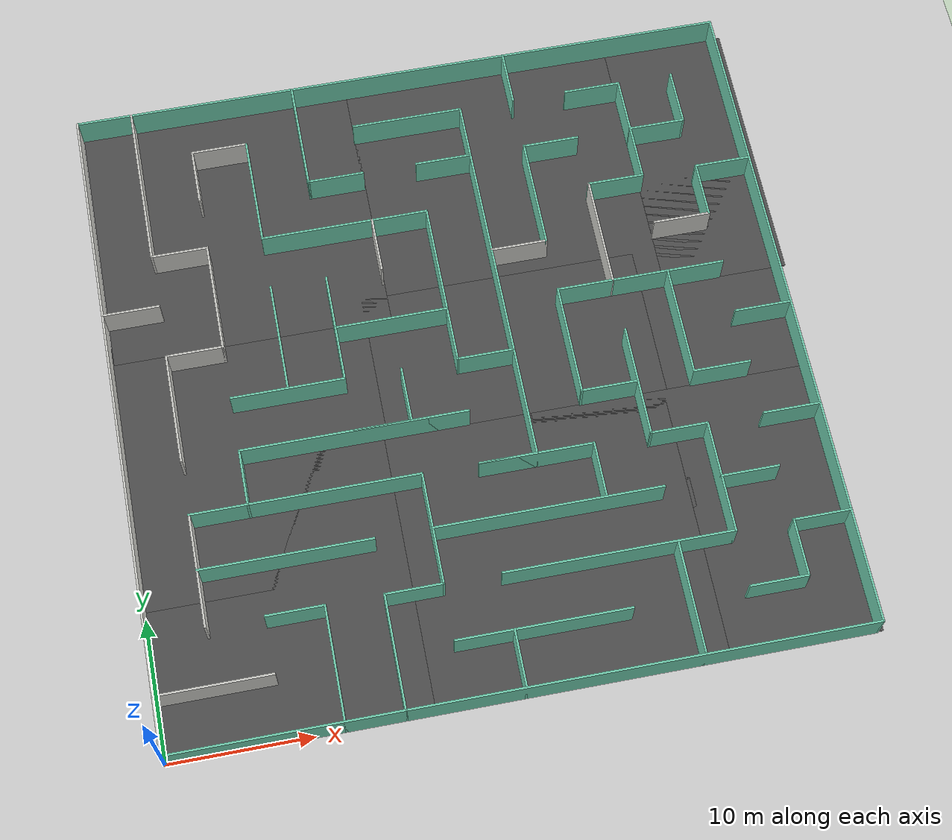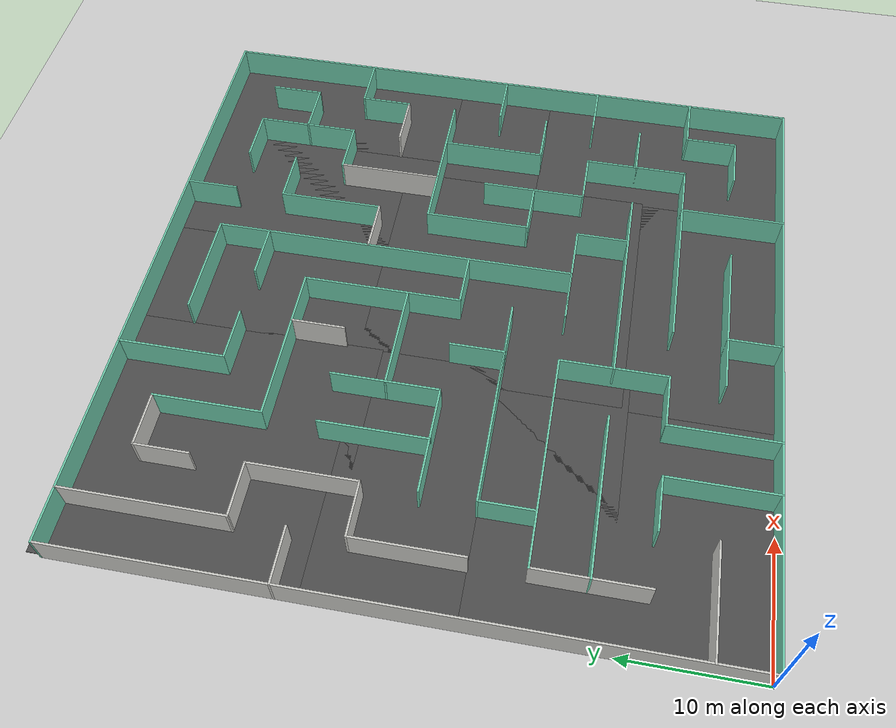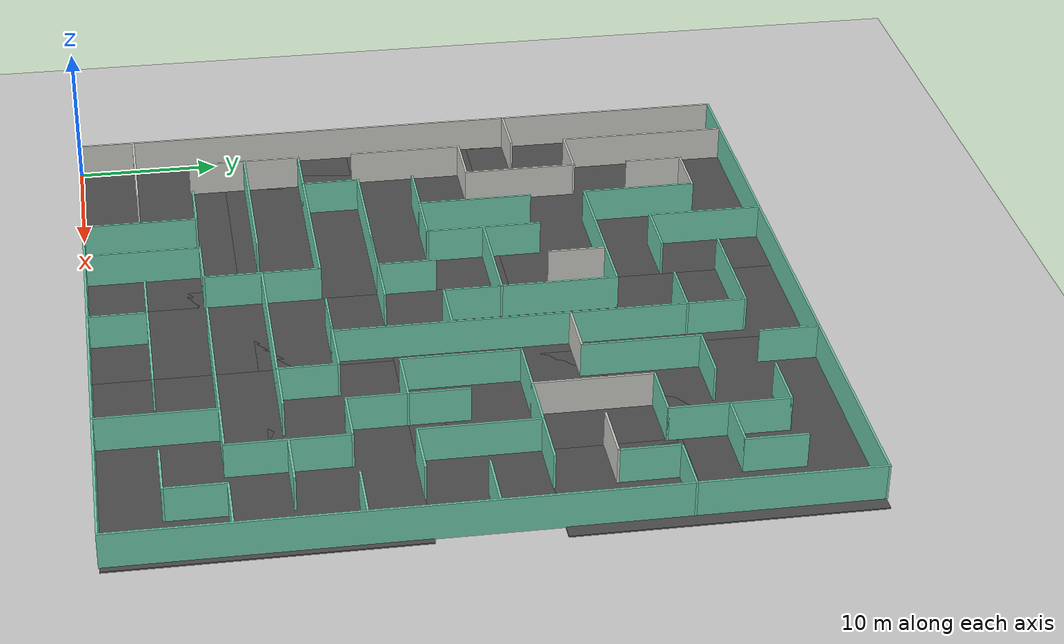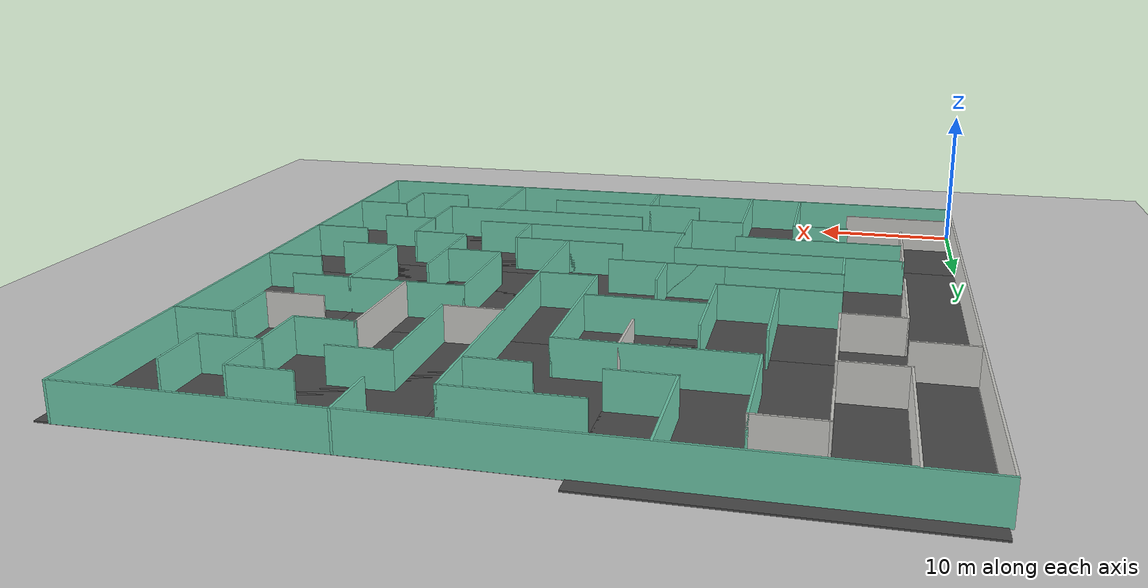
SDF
<sdf version="1.5">
 <world name="default">
  <light name="sun" type="directional">
   <pose>0 0 10 0 -0 0</pose>
   <diffuse>0.8 0.8 0.8 1</diffuse>
   <specular>0.2 0.2 0.2 1</specular>
   <attenuation>
    <range>1000</range>
    <constant>0.9</constant>
    <linear>0.01</linear>
    <quadratic>0.001</quadratic>
   </attenuation>
   <direction>-0.5 0.1 -0.9</direction>
  </light>
  <model name="ground_plane">
   <static>1</static>
   <link name="link">
    <collision name="collision">
     <geometry><plane><normal>0 0 1</normal><size>100 100</size></plane></geometry>
     <surface><friction><ode><mu>100</mu><mu2>50</mu2></ode></friction></surface>
    </collision>
    <visual name="visual">
     <cast_shadows>0</cast_shadows>
     <geometry><plane><normal>0 0 1</normal><size>100 100</size></plane></geometry>
     <material>
      <script><uri>file://media/materials/scripts/gazebo.material</uri><name>Gazebo/Grey</name></script>
     </material>
    </visual>
   </link>
  </model>
  <physics name="default_physics" default="0" type="ode">
   <max_step_size>0.001</max_step_size>
   <real_time_factor>1</real_time_factor>
   <real_time_update_rate>1000</real_time_update_rate>
   <gravity>0 0 -9.8</gravity>
   <magnetic_field>5.5645e-06 2.28758e-05 -4.23884e-05</magnetic_field>
  </physics>
  <scene><ambient>0.4 0.4 0.4 1</ambient><background>0.7 0.7 0.7 1</background><shadows>1</shadows></scene>
  <spherical_coordinates>
   <surface_model>EARTH_WGS84</surface_model>
   <latitude_deg>0</latitude_deg>
   <longitude_deg>0</longitude_deg>
   <elevation>0</elevation>
   <heading_deg>0</heading_deg>
  </spherical_coordinates>
  <model name="maze2_10">
   <pose>24 24 0 0 -0 0</pose>
   <link name="Wall_0">
    <collision name="Wall_0_Collision">
     <geometry><box><size>16.15 0.15 2.5</size></box></geometry>
     <pose>0 0 1.25 0 -0 0</pose>
    </collision>
    <visual name="Wall_0_Visual">
     <pose>0 0 1.25 0 -0 0</pose>
     <geometry><box><size>16.15 0.15 2.5</size></box></geometry>
     <material>
      <script><uri>file://media/materials/scripts/gazebo.material</uri><name>Gazebo/Grey</name></script>
      <ambient>0.435294 0.796078 0.67451 1</ambient>
     </material>
    </visual>
    <pose>-8 -4 0 0 -0 0</pose>
   </link>
   <link name="Wall_101">
    <collision name="Wall_101_Collision">
     <geometry><box><size>12.15 0.15 2.5</size></box></geometry>
     <pose>0 0 1.25 0 -0 0</pose>
    </collision>
    <visual name="Wall_101_Visual">
     <pose>0 0 1.25 0 -0 0</pose>
     <geometry><box><size>12.15 0.15 2.5</size></box></geometry>
     <material>
      <script><uri>file://media/materials/scripts/gazebo.material</uri><name>Gazebo/Grey</name></script>
      <ambient>0.435294 0.796078 0.67451 1</ambient>
     </material>
    </visual>
    <pose>-1e-06 6 0 0 0 -1.5708</pose>
   </link>
   <link name="Wall_103">
    <collision name="Wall_103_Collision">
     <geometry><box><size>8.15 0.15 2.5</size></box></geometry>
     <pose>0 0 1.25 0 -0 0</pose>
    </collision>
    <visual name="Wall_103_Visual">
     <pose>0 0 1.25 0 -0 0</pose>
     <geometry><box><size>8.15 0.15 2.5</size></box></geometry>
     <material>
      <script><uri>file://media/materials/scripts/gazebo.material</uri><name>Gazebo/Grey</name></script>
      <ambient>0.435294 0.796078 0.67451 1</ambient>
     </material>
    </visual>
    <pose>4 -8 0 0 -0 3.14159</pose>
   </link>
   <link name="Wall_105">
    <collision name="Wall_105_Collision">
     <geometry><box><size>4.15 0.15 2.5</size></box></geometry>
     <pose>0 0 1.25 0 -0 0</pose>
    </collision>
    <visual name="Wall_105_Visual">
     <pose>0 0 1.25 0 -0 0</pose>
     <geometry><box><size>4.15 0.15 2.5</size></box></geometry>
     <material>
      <script><uri>file://media/materials/scripts/gazebo.material</uri><name>Gazebo/Grey</name></script>
      <ambient>0.435294 0.796078 0.67451 1</ambient>
     </material>
    </visual>
    <pose>8 -10 0 0 -0 1.5708</pose>
   </link>
   <link name="Wall_107">
    <collision name="Wall_107_Collision">
     <geometry><box><size>16.15 0.15 2.5</size></box></geometry>
     <pose>0 0 1.25 0 -0 0</pose>
    </collision>
    <visual name="Wall_107_Visual">
     <pose>0 0 1.25 0 -0 0</pose>
     <geometry><box><size>16.15 0.15 2.5</size></box></geometry>
     <material>
      <script><uri>file://media/materials/scripts/gazebo.material</uri><name>Gazebo/Grey</name></script>
      <ambient>0.435294 0.796078 0.67451 1</ambient>
     </material>
    </visual>
    <pose>8 -16 0 0 -0 0</pose>
   </link>
   <link name="Wall_109">
    <collision name="Wall_109_Collision">
     <geometry><box><size>4.15 0.15 2.5</size></box></geometry>
     <pose>0 0 1.25 0 -0 0</pose>
    </collision>
    <visual name="Wall_109_Visual">
     <pose>0 0 1.25 0 -0 0</pose>
     <geometry><box><size>4.15 0.15 2.5</size></box></geometry>
     <material>
      <script><uri>file://media/materials/scripts/gazebo.material</uri><name>Gazebo/Grey</name></script>
      <ambient>0.435294 0.796078 0.67451 1</ambient>
     </material>
    </visual>
    <pose>2 -8 0 0 -0 0</pose>
   </link>
   <link name="Wall_11">
    <collision name="Wall_11_Collision">
     <geometry><box><size>8.15 0.15 2.5</size></box></geometry>
     <pose>0 0 1.25 0 -0 0</pose>
    </collision>
    <visual name="Wall_11_Visual">
     <pose>0 0 1.25 0 -0 0</pose>
     <geometry><box><size>8.15 0.15 2.5</size></box></geometry>
     <material>
      <script><uri>file://media/materials/scripts/gazebo.material</uri><name>Gazebo/CeilingTiled</name></script>
      <ambient>0.435294 0.796078 0.67451 1</ambient>
     </material>
    </visual>
    <pose>-20 0 0 0 0 -1.5708</pose>
   </link>
   <link name="Wall_111">
    <collision name="Wall_111_Collision">
     <geometry><box><size>8.15 0.15 2.5</size></box></geometry>
     <pose>0 0 1.25 0 -0 0</pose>
    </collision>
    <visual name="Wall_111_Visual">
     <pose>0 0 1.25 0 -0 0</pose>
     <geometry><box><size>8.15 0.15 2.5</size></box></geometry>
     <material>
      <script><uri>file://media/materials/scripts/gazebo.material</uri><name>Gazebo/Grey</name></script>
      <ambient>0.435294 0.796078 0.67451 1</ambient>
     </material>
    </visual>
    <pose>-8 4 0 0 0 -1.5708</pose>
   </link>
   <link name="Wall_113">
    <collision name="Wall_113_Collision">
     <geometry><box><size>8.15 0.15 2.5</size></box></geometry>
     <pose>0 0 1.25 0 -0 0</pose>
    </collision>
    <visual name="Wall_113_Visual">
     <pose>0 0 1.25 0 -0 0</pose>
     <geometry><box><size>8.15 0.15 2.5</size></box></geometry>
     <material>
      <script><uri>file://media/materials/scripts/gazebo.material</uri><name>Gazebo/Grey</name></script>
      <ambient>0.435294 0.796078 0.67451 1</ambient>
     </material>
    </visual>
    <pose>-12 0 0 0 -0 0</pose>
   </link>
   <link name="Wall_117">
    <collision name="Wall_117_Collision">
     <geometry><box><size>12.15 0.15 2.5</size></box></geometry>
     <pose>0 0 1.25 0 -0 0</pose>
    </collision>
    <visual name="Wall_117_Visual">
     <pose>0 0 1.25 0 -0 0</pose>
     <geometry><box><size>12.15 0.15 2.5</size></box></geometry>
     <material>
      <script><uri>file://media/materials/scripts/gazebo.material</uri><name>Gazebo/Grey</name></script>
      <ambient>0.435294 0.796078 0.67451 1</ambient>
     </material>
    </visual>
    <pose>-6 12 0 0 -0 0</pose>
   </link>
   <link name="Wall_119">
    <collision name="Wall_119_Collision">
     <geometry><box><size>8.15 0.15 2.5</size></box></geometry>
     <pose>0 0 1.25 0 -0 0</pose>
    </collision>
    <visual name="Wall_119_Visual">
     <pose>0 0 1.25 0 -0 0</pose>
     <geometry><box><size>8.15 0.15 2.5</size></box></geometry>
     <material>
      <script><uri>file://media/materials/scripts/gazebo.material</uri><name>Gazebo/Grey</name></script>
      <ambient>0.435294 0.796078 0.67451 1</ambient>
     </material>
    </visual>
    <pose>-12 4 0 0 0 -1.5708</pose>
   </link>
   <link name="Wall_121">
    <collision name="Wall_121_Collision">
     <geometry><box><size>8.15 0.15 2.5</size></box></geometry>
     <pose>0 0 1.25 0 -0 0</pose>
    </collision>
    <visual name="Wall_121_Visual">
     <pose>0 0 1.25 0 -0 0</pose>
     <geometry><box><size>8.15 0.15 2.5</size></box></geometry>
     <material>
      <script><uri>file://media/materials/scripts/gazebo.material</uri><name>Gazebo/Grey</name></script>
      <ambient>0.435294 0.796078 0.67451 1</ambient>
     </material>
    </visual>
    <pose>-4 -4 0 0 -0 3.14159</pose>
   </link>
   <link name="Wall_123">
    <collision name="Wall_123_Collision">
     <geometry><box><size>4.15 0.15 2.5</size></box></geometry>
     <pose>0 0 1.25 0 -0 0</pose>
    </collision>
    <visual name="Wall_123_Visual">
     <pose>0 0 1.25 0 -0 0</pose>
     <geometry><box><size>4.15 0.15 2.5</size></box></geometry>
     <material>
      <script><uri>file://media/materials/scripts/gazebo.material</uri><name>Gazebo/Grey</name></script>
      <ambient>0.435294 0.796078 0.67451 1</ambient>
     </material>
    </visual>
    <pose>10 -4 0 0 -0 3.14159</pose>
   </link>
   <link name="Wall_125">
    <collision name="Wall_125_Collision">
     <geometry><box><size>16.15 0.15 2.5</size></box></geometry>
     <pose>0 0 1.25 0 -0 0</pose>
    </collision>
    <visual name="Wall_125_Visual">
     <pose>0 0 1.25 0 -0 0</pose>
     <geometry><box><size>16.15 0.15 2.5</size></box></geometry>
     <material>
      <script><uri>file://media/materials/scripts/gazebo.material</uri><name>Gazebo/Grey</name></script>
      <ambient>0.435294 0.796078 0.67451 1</ambient>
     </material>
    </visual>
    <pose>4 -12 0 0 -0 0</pose>
   </link>
   <link name="Wall_127">
    <collision name="Wall_127_Collision">
     <geometry><box><size>8.15 0.15 2.5</size></box></geometry>
     <pose>0 0 1.25 0 -0 0</pose>
    </collision>
    <visual name="Wall_127_Visual">
     <pose>0 0 1.25 0 -0 0</pose>
     <geometry><box><size>8.15 0.15 2.5</size></box></geometry>
     <material>
      <script><uri>file://media/materials/scripts/gazebo.material</uri><name>Gazebo/Grey</name></script>
      <ambient>0.435294 0.796078 0.67451 1</ambient>
     </material>
    </visual>
    <pose>12 -4 0 0 -0 1.5708</pose>
   </link>
   <link name="Wall_129">
    <collision name="Wall_129_Collision">
     <geometry><box><size>8.15 0.15 2.5</size></box></geometry>
     <pose>0 0 1.25 0 -0 0</pose>
    </collision>
    <visual name="Wall_129_Visual">
     <pose>0 0 1.25 0 -0 0</pose>
     <geometry><box><size>8.15 0.15 2.5</size></box></geometry>
     <material>
      <script><uri>file://media/materials/scripts/gazebo.material</uri><name>Gazebo/Grey</name></script>
      <ambient>0.435294 0.796078 0.67451 1</ambient>
     </material>
    </visual>
    <pose>8 0 0 0 -0 1.5708</pose>
   </link>
   <link name="Wall_13">
    <collision name="Wall_13_Collision">
     <geometry><box><size>16.15 0.15 2.5</size></box></geometry>
     <pose>0 0 1.25 0 -0 0</pose>
    </collision>
    <visual name="Wall_13_Visual">
     <pose>0 0 1.25 0 -0 0</pose>
     <geometry><box><size>16.15 0.15 2.5</size></box></geometry>
     <material>
      <script><uri>file://media/materials/scripts/gazebo.material</uri><name>Gazebo/Grey</name></script>
      <ambient>0.435294 0.796078 0.67451 1</ambient>
     </material>
    </visual>
    <pose>-12 -8 0 0 -0 0</pose>
   </link>
   <link name="Wall_131">
    <collision name="Wall_131_Collision">
     <geometry><box><size>8.15 0.15 2.5</size></box></geometry>
     <pose>0 0 1.25 0 -0 0</pose>
    </collision>
    <visual name="Wall_131_Visual">
     <pose>0 0 1.25 0 -0 0</pose>
     <geometry><box><size>8.15 0.15 2.5</size></box></geometry>
     <material>
      <script><uri>file://media/materials/scripts/gazebo.material</uri><name>Gazebo/Grey</name></script>
      <ambient>0.435294 0.796078 0.67451 1</ambient>
     </material>
    </visual>
    <pose>16 -12 0 0 -0 1.5708</pose>
   </link>
   <link name="Wall_133">
    <collision name="Wall_133_Collision">
     <geometry><box><size>4.15 0.15 2.5</size></box></geometry>
     <pose>0 0 1.25 0 -0 0</pose>
    </collision>
    <visual name="Wall_133_Visual">
     <pose>0 0 1.25 0 -0 0</pose>
     <geometry><box><size>4.15 0.15 2.5</size></box></geometry>
     <material>
      <script><uri>file://media/materials/scripts/gazebo.material</uri><name>Gazebo/Grey</name></script>
      <ambient>0.435294 0.796078 0.67451 1</ambient>
     </material>
    </visual>
    <pose>2 16 0 0 -0 0</pose>
   </link>
   <link name="Wall_135">
    <collision name="Wall_135_Collision">
     <geometry><box><size>8.15 0.15 2.5</size></box></geometry>
     <pose>0 0 1.25 0 -0 0</pose>
    </collision>
    <visual name="Wall_135_Visual">
     <pose>0 0 1.25 0 -0 0</pose>
     <geometry><box><size>8.15 0.15 2.5</size></box></geometry>
     <material>
      <script><uri>file://media/materials/scripts/gazebo.material</uri><name>Gazebo/Grey</name></script>
      <ambient>0.435294 0.796078 0.67451 1</ambient>
     </material>
    </visual>
    <pose>-4 4 0 0 -0 0</pose>
   </link>
   <link name="Wall_137">
    <collision name="Wall_137_Collision">
     <geometry><box><size>4.15 0.15 2.5</size></box></geometry>
     <pose>0 0 1.25 0 -0 0</pose>
    </collision>
    <visual name="Wall_137_Visual">
     <pose>0 0 1.25 0 -0 0</pose>
     <geometry><box><size>4.15 0.15 2.5</size></box></geometry>
     <material>
      <script><uri>file://media/materials/scripts/gazebo.material</uri><name>Gazebo/Grey</name></script>
      <ambient>0.435294 0.796078 0.67451 1</ambient>
     </material>
    </visual>
    <pose>8 22 0 0 0 -1.5708</pose>
   </link>
   <link name="Wall_139">
    <collision name="Wall_139_Collision">
     <geometry><box><size>4.15 0.15 2.5</size></box></geometry>
     <pose>0 0 1.25 0 -0 0</pose>
    </collision>
    <visual name="Wall_139_Visual">
     <pose>0 0 1.25 0 -0 0</pose>
     <geometry><box><size>4.15 0.15 2.5</size></box></geometry>
     <material>
      <script><uri>file://media/materials/scripts/gazebo.material</uri><name>Gazebo/Grey</name></script>
      <ambient>0.435294 0.796078 0.67451 1</ambient>
     </material>
    </visual>
    <pose>10 16 0 0 -0 0</pose>
   </link>
   <link name="Wall_143">
    <collision name="Wall_143_Collision">
     <geometry><box><size>8.15 0.15 2.5</size></box></geometry>
     <pose>0 0 1.25 0 -0 0</pose>
    </collision>
    <visual name="Wall_143_Visual">
     <pose>0 0 1.25 0 -0 0</pose>
     <geometry><box><size>8.15 0.15 2.5</size></box></geometry>
     <material>
      <script><uri>file://media/materials/scripts/gazebo.material</uri><name>Gazebo/Grey</name></script>
      <ambient>0.435294 0.796078 0.67451 1</ambient>
     </material>
    </visual>
    <pose>8 12 0 0 -0 1.5708</pose>
   </link>
   <link name="Wall_146">
    <collision name="Wall_146_Collision">
     <geometry><box><size>4.15 0.15 2.5</size></box></geometry>
     <pose>0 0 1.25 0 -0 0</pose>
    </collision>
    <visual name="Wall_146_Visual">
     <pose>0 0 1.25 0 -0 0</pose>
     <geometry><box><size>4.15 0.15 2.5</size></box></geometry>
     <material>
      <script><uri>file://media/materials/scripts/gazebo.material</uri><name>Gazebo/CeilingTiled</name></script>
      <ambient>0.435294 0.796078 0.67451 1</ambient>
     </material>
    </visual>
    <pose>6 8 0 0 -0 3.14159</pose>
   </link>
   <link name="Wall_148">
    <collision name="Wall_148_Collision">
     <geometry><box><size>4.15 0.15 2.5</size></box></geometry>
     <pose>0 0 1.25 0 -0 0</pose>
    </collision>
    <visual name="Wall_148_Visual">
     <pose>0 0 1.25 0 -0 0</pose>
     <geometry><box><size>4.15 0.15 2.5</size></box></geometry>
     <material>
      <script><uri>file://media/materials/scripts/gazebo.material</uri><name>Gazebo/Grey</name></script>
      <ambient>0.435294 0.796078 0.67451 1</ambient>
     </material>
    </visual>
    <pose>22 12 0 0 -0 0</pose>
   </link>
   <link name="Wall_15">
    <collision name="Wall_15_Collision">
     <geometry><box><size>8.15 0.15 2.5</size></box></geometry>
     <pose>0 0 1.25 0 -0 0</pose>
    </collision>
    <visual name="Wall_15_Visual">
     <pose>0 0 1.25 0 -0 0</pose>
     <geometry><box><size>8.15 0.15 2.5</size></box></geometry>
     <material>
      <script><uri>file://media/materials/scripts/gazebo.material</uri><name>Gazebo/Grey</name></script>
      <ambient>0.435294 0.796078 0.67451 1</ambient>
     </material>
    </visual>
    <pose>-4 -12 0 0 0 -1.5708</pose>
   </link>
   <link name="Wall_150">
    <collision name="Wall_150_Collision">
     <geometry><box><size>4.15 0.15 2.5</size></box></geometry>
     <pose>0 0 1.25 0 -0 0</pose>
    </collision>
    <visual name="Wall_150_Visual">
     <pose>0 0 1.25 0 -0 0</pose>
     <geometry><box><size>4.15 0.15 2.5</size></box></geometry>
     <material>
      <script><uri>file://media/materials/scripts/gazebo.material</uri><name>Gazebo/Grey</name></script>
      <ambient>0.435294 0.796078 0.67451 1</ambient>
     </material>
    </visual>
    <pose>20 10 0 0 0 -1.5708</pose>
   </link>
   <link name="Wall_152">
    <collision name="Wall_152_Collision">
     <geometry><box><size>4.15 0.15 2.5</size></box></geometry>
     <pose>0 0 1.25 0 -0 0</pose>
    </collision>
    <visual name="Wall_152_Visual">
     <pose>0 0 1.25 0 -0 0</pose>
     <geometry><box><size>4.15 0.15 2.5</size></box></geometry>
     <material>
      <script><uri>file://media/materials/scripts/gazebo.material</uri><name>Gazebo/CeilingTiled</name></script>
      <ambient>0.435294 0.796078 0.67451 1</ambient>
     </material>
    </visual>
    <pose>18 8 0 0 -0 3.14159</pose>
   </link>
   <link name="Wall_154">
    <collision name="Wall_154_Collision">
     <geometry><box><size>4.15 0.15 2.5</size></box></geometry>
     <pose>0 0 1.25 0 -0 0</pose>
    </collision>
    <visual name="Wall_154_Visual">
     <pose>0 0 1.25 0 -0 0</pose>
     <geometry><box><size>4.15 0.15 2.5</size></box></geometry>
     <material>
      <script><uri>file://media/materials/scripts/gazebo.material</uri><name>Gazebo/Grey</name></script>
      <ambient>0.435294 0.796078 0.67451 1</ambient>
     </material>
    </visual>
    <pose>2 0 0 0 -0 0</pose>
   </link>
   <link name="Wall_17">
    <collision name="Wall_17_Collision">
     <geometry><box><size>12.15 0.15 2.5</size></box></geometry>
     <pose>0 0 1.25 0 -0 0</pose>
    </collision>
    <visual name="Wall_17_Visual">
     <pose>0 0 1.25 0 -0 0</pose>
     <geometry><box><size>12.15 0.15 2.5</size></box></geometry>
     <material>
      <script><uri>file://media/materials/scripts/gazebo.material</uri><name>Gazebo/Grey</name></script>
      <ambient>0.435294 0.796078 0.67451 1</ambient>
     </material>
    </visual>
    <pose>14 4 0 0 -0 0</pose>
   </link>
   <link name="Wall_19">
    <collision name="Wall_19_Collision">
     <geometry><box><size>4.15 0.15 2.5</size></box></geometry>
     <pose>0 0 1.25 0 -0 0</pose>
    </collision>
    <visual name="Wall_19_Visual">
     <pose>0 0 1.25 0 -0 0</pose>
     <geometry><box><size>4.15 0.15 2.5</size></box></geometry>
     <material>
      <script><uri>file://media/materials/scripts/gazebo.material</uri><name>Gazebo/Grey</name></script>
      <ambient>0.435294 0.796078 0.67451 1</ambient>
     </material>
    </visual>
    <pose>14 12 0 0 -0 3.14159</pose>
   </link>
   <link name="Wall_2">
    <collision name="Wall_2_Collision">
     <geometry><box><size>12.15 0.15 2.5</size></box></geometry>
     <pose>0 0 1.25 0 -0 0</pose>
    </collision>
    <visual name="Wall_2_Visual">
     <pose>0 0 1.25 0 -0 0</pose>
     <geometry><box><size>12.15 0.15 2.5</size></box></geometry>
     <material>
      <script><uri>file://media/materials/scripts/gazebo.material</uri><name>Gazebo/Grey</name></script>
      <ambient>0.435294 0.796078 0.67451 1</ambient>
     </material>
    </visual>
    <pose>-14 -12 0 0 -0 0</pose>
   </link>
   <link name="Wall_21">
    <collision name="Wall_21_Collision">
     <geometry><box><size>4.15 0.15 2.5</size></box></geometry>
     <pose>0 0 1.25 0 -0 0</pose>
    </collision>
    <visual name="Wall_21_Visual">
     <pose>0 0 1.25 0 -0 0</pose>
     <geometry><box><size>4.15 0.15 2.5</size></box></geometry>
     <material>
      <script><uri>file://media/materials/scripts/gazebo.material</uri><name>Gazebo/CeilingTiled</name></script>
      <ambient>0.435294 0.796078 0.67451 1</ambient>
     </material>
    </visual>
    <pose>-22 8 0 0 -0 0</pose>
   </link>
   <link name="Wall_23">
    <collision name="Wall_23_Collision">
     <geometry><box><size>12.15 0.15 2.5</size></box></geometry>
     <pose>0 0 1.25 0 -0 0</pose>
    </collision>
    <visual name="Wall_23_Visual">
     <pose>0 0 1.25 0 -0 0</pose>
     <geometry><box><size>12.15 0.15 2.5</size></box></geometry>
     <material>
      <script><uri>file://media/materials/scripts/gazebo.material</uri><name>Gazebo/Grey</name></script>
      <ambient>1 1 1 1</ambient>
     </material>
    </visual>
    <pose>-6 12 0 0 -0 0</pose>
   </link>
   <link name="Wall_25">
    <collision name="Wall_25_Collision">
     <geometry><box><size>4.15 0.15 2.5</size></box></geometry>
     <pose>0 0 1.25 0 -0 0</pose>
    </collision>
    <visual name="Wall_25_Visual">
     <pose>0 0 1.25 0 -0 0</pose>
     <geometry><box><size>4.15 0.15 2.5</size></box></geometry>
     <material>
      <script><uri>file://media/materials/scripts/gazebo.material</uri><name>Gazebo/Grey</name></script>
      <ambient>0.435294 0.796078 0.67451 1</ambient>
     </material>
    </visual>
    <pose>-6 -16 0 0 -0 0</pose>
   </link>
   <link name="Wall_27">
    <collision name="Wall_27_Collision">
     <geometry><box><size>8.15 0.15 2.5</size></box></geometry>
     <pose>0 0 1.25 0 -0 0</pose>
    </collision>
    <visual name="Wall_27_Visual">
     <pose>0 0 1.25 0 -0 0</pose>
     <geometry><box><size>8.15 0.15 2.5</size></box></geometry>
     <material>
      <script><uri>file://media/materials/scripts/gazebo.material</uri><name>Gazebo/Grey</name></script>
      <ambient>0.435294 0.796078 0.67451 1</ambient>
     </material>
    </visual>
    <pose>12 -20 0 0 -0 1.5708</pose>
   </link>
   <link name="Wall_29">
    <collision name="Wall_29_Collision">
     <geometry><box><size>4.15 0.15 2.5</size></box></geometry>
     <pose>0 0 1.25 0 -0 0</pose>
    </collision>
    <visual name="Wall_29_Visual">
     <pose>0 0 1.25 0 -0 0</pose>
     <geometry><box><size>4.15 0.15 2.5</size></box></geometry>
     <material>
      <script><uri>file://media/materials/scripts/gazebo.material</uri><name>Gazebo/Grey</name></script>
      <ambient>0.435294 0.796078 0.67451 1</ambient>
     </material>
    </visual>
    <pose>22 -8 0 0 -0 0</pose>
   </link>
   <link name="Wall_31">
    <collision name="Wall_31_Collision">
     <geometry><box><size>4.15 0.15 2.5</size></box></geometry>
     <pose>0 0 1.25 0 -0 0</pose>
    </collision>
    <visual name="Wall_31_Visual">
     <pose>0 0 1.25 0 -0 0</pose>
     <geometry><box><size>4.15 0.15 2.5</size></box></geometry>
     <material>
      <script><uri>file://media/materials/scripts/gazebo.material</uri><name>Gazebo/CeilingTiled</name></script>
      <ambient>0.435294 0.796078 0.67451 1</ambient>
     </material>
    </visual>
    <pose>-16 18 0 0 0 -1.5708</pose>
   </link>
   <link name="Wall_33">
    <collision name="Wall_33_Collision">
     <geometry><box><size>12.15 0.15 2.5</size></box></geometry>
     <pose>0 0 1.25 0 -0 0</pose>
    </collision>
    <visual name="Wall_33_Visual">
     <pose>0 0 1.25 0 -0 0</pose>
     <geometry><box><size>12.15 0.15 2.5</size></box></geometry>
     <material>
      <script><uri>file://media/materials/scripts/gazebo.material</uri><name>Gazebo/CeilingTiled</name></script>
      <ambient>0.435294 0.796078 0.67451 1</ambient>
     </material>
    </visual>
    <pose>-20 18 0 0 -0 1.5708</pose>
   </link>
   <link name="Wall_35">
    <collision name="Wall_35_Collision">
     <geometry><box><size>4.15 0.15 2.5</size></box></geometry>
     <pose>0 0 1.25 0 -0 0</pose>
    </collision>
    <visual name="Wall_35_Visual">
     <pose>0 0 1.25 0 -0 0</pose>
     <geometry><box><size>4.15 0.15 2.5</size></box></geometry>
     <material>
      <script><uri>file://media/materials/scripts/gazebo.material</uri><name>Gazebo/CeilingTiled</name></script>
      <ambient>0.435294 0.796078 0.67451 1</ambient>
     </material>
    </visual>
    <pose>-14 20 0 0 -0 0</pose>
   </link>
   <link name="Wall_37">
    <collision name="Wall_37_Collision">
     <geometry><box><size>8.15 0.15 2.5</size></box></geometry>
     <pose>0 0 1.25 0 -0 0</pose>
    </collision>
    <visual name="Wall_37_Visual">
     <pose>0 0 1.25 0 -0 0</pose>
     <geometry><box><size>8.15 0.15 2.5</size></box></geometry>
     <material>
      <script><uri>file://media/materials/scripts/gazebo.material</uri><name>Gazebo/Grey</name></script>
      <ambient>0.435294 0.796078 0.67451 1</ambient>
     </material>
    </visual>
    <pose>-12 -20 0 0 -0 1.5708</pose>
   </link>
   <link name="Wall_39">
    <collision name="Wall_39_Collision">
     <geometry><box><size>8.15 0.15 2.5</size></box></geometry>
     <pose>0 0 1.25 0 -0 0</pose>
    </collision>
    <visual name="Wall_39_Visual">
     <pose>0 0 1.25 0 -0 0</pose>
     <geometry><box><size>8.15 0.15 2.5</size></box></geometry>
     <material>
      <script><uri>file://media/materials/scripts/gazebo.material</uri><name>Gazebo/CeilingTiled</name></script>
      <ambient>0.435294 0.796078 0.67451 1</ambient>
     </material>
    </visual>
    <pose>-20 -20 0 0 -0 0</pose>
   </link>
   <link name="Wall_4">
    <collision name="Wall_4_Collision">
     <geometry><box><size>48.15 0.15 2.5</size></box></geometry>
     <pose>0 0 1.25 0 -0 0</pose>
    </collision>
    <visual name="Wall_4_Visual">
     <pose>0 0 1.25 0 -0 0</pose>
     <geometry><box><size>48.15 0.15 2.5</size></box></geometry>
     <material>
      <script><uri>file://media/materials/scripts/gazebo.material</uri><name>Gazebo/Grey</name></script>
      <ambient>0.435294 0.796078 0.67451 1</ambient>
     </material>
    </visual>
    <pose>-1e-06 -24 0 0 -0 0</pose>
   </link>
   <link name="Wall_41">
    <collision name="Wall_41_Collision">
     <geometry><box><size>4.15 0.15 2.5</size></box></geometry>
     <pose>0 0 1.25 0 -0 0</pose>
    </collision>
    <visual name="Wall_41_Visual">
     <pose>0 0 1.25 0 -0 0</pose>
     <geometry><box><size>4.15 0.15 2.5</size></box></geometry>
     <material>
      <script><uri>file://media/materials/scripts/gazebo.material</uri><name>Gazebo/CeilingTiled</name></script>
      <ambient>0.435294 0.796078 0.67451 1</ambient>
     </material>
    </visual>
    <pose>-18 4 0 0 -0 0</pose>
   </link>
   <link name="Wall_43">
    <collision name="Wall_43_Collision">
     <geometry><box><size>4.15 0.15 2.5</size></box></geometry>
     <pose>0 0 1.25 0 -0 0</pose>
    </collision>
    <visual name="Wall_43_Visual">
     <pose>0 0 1.25 0 -0 0</pose>
     <geometry><box><size>4.15 0.15 2.5</size></box></geometry>
     <material>
      <script><uri>file://media/materials/scripts/gazebo.material</uri><name>Gazebo/CeilingTiled</name></script>
      <ambient>0.435294 0.796078 0.67451 1</ambient>
     </material>
    </visual>
    <pose>-18 12 0 0 -0 3.14159</pose>
   </link>
   <link name="Wall_45">
    <collision name="Wall_45_Collision">
     <geometry><box><size>8.15 0.15 2.5</size></box></geometry>
     <pose>0 0 1.25 0 -0 0</pose>
    </collision>
    <visual name="Wall_45_Visual">
     <pose>0 0 1.25 0 -0 0</pose>
     <geometry><box><size>8.15 0.15 2.5</size></box></geometry>
     <material>
      <script><uri>file://media/materials/scripts/gazebo.material</uri><name>Gazebo/CeilingTiled</name></script>
      <ambient>0.435294 0.796078 0.67451 1</ambient>
     </material>
    </visual>
    <pose>-16 8 0 0 -0 1.5708</pose>
   </link>
   <link name="Wall_47">
    <collision name="Wall_47_Collision">
     <geometry><box><size>8.15 0.15 2.5</size></box></geometry>
     <pose>0 0 1.25 0 -0 0</pose>
    </collision>
    <visual name="Wall_47_Visual">
     <pose>0 0 1.25 0 -0 0</pose>
     <geometry><box><size>8.15 0.15 2.5</size></box></geometry>
     <material>
      <script><uri>file://media/materials/scripts/gazebo.material</uri><name>Gazebo/Grey</name></script>
      <ambient>0.435294 0.796078 0.67451 1</ambient>
     </material>
    </visual>
    <pose>-12 16 0 0 0 -1.5708</pose>
   </link>
   <link name="Wall_5">
    <collision name="Wall_5_Collision">
     <geometry><box><size>48.15 0.15 2.5</size></box></geometry>
     <pose>0 0 1.25 0 -0 0</pose>
    </collision>
    <visual name="Wall_5_Visual">
     <pose>0 0 1.25 0 -0 0</pose>
     <geometry><box><size>48.15 0.15 2.5</size></box></geometry>
     <material>
      <script><uri>file://media/materials/scripts/gazebo.material</uri><name>Gazebo/Grey</name></script>
      <ambient>0.435294 0.796078 0.67451 1</ambient>
     </material>
    </visual>
    <pose>24 0 0 0 -0 1.5708</pose>
   </link>
   <link name="Wall_50">
    <collision name="Wall_50_Collision">
     <geometry><box><size>4.15 0.15 2.5</size></box></geometry>
     <pose>0 0 1.25 0 -0 0</pose>
    </collision>
    <visual name="Wall_50_Visual">
     <pose>0 0 1.25 0 -0 0</pose>
     <geometry><box><size>4.15 0.15 2.5</size></box></geometry>
     <material>
      <script><uri>file://media/materials/scripts/gazebo.material</uri><name>Gazebo/Grey</name></script>
      <ambient>0.435294 0.796078 0.67451 1</ambient>
     </material>
    </visual>
    <pose>20 18 0 0 -0 1.5708</pose>
   </link>
   <link name="Wall_52">
    <collision name="Wall_52_Collision">
     <geometry><box><size>4.15 0.15 2.5</size></box></geometry>
     <pose>0 0 1.25 0 -0 0</pose>
    </collision>
    <visual name="Wall_52_Visual">
     <pose>0 0 1.25 0 -0 0</pose>
     <geometry><box><size>4.15 0.15 2.5</size></box></geometry>
     <material>
      <script><uri>file://media/materials/scripts/gazebo.material</uri><name>Gazebo/Grey</name></script>
      <ambient>0.435294 0.796078 0.67451 1</ambient>
     </material>
    </visual>
    <pose>22 0 0 0 -0 0</pose>
   </link>
   <link name="Wall_54">
    <collision name="Wall_54_Collision">
     <geometry><box><size>8.15 0.15 2.5</size></box></geometry>
     <pose>0 0 1.25 0 -0 0</pose>
    </collision>
    <visual name="Wall_54_Visual">
     <pose>0 0 1.25 0 -0 0</pose>
     <geometry><box><size>8.15 0.15 2.5</size></box></geometry>
     <material>
      <script><uri>file://media/materials/scripts/gazebo.material</uri><name>Gazebo/CeilingTiled</name></script>
      <ambient>0.435294 0.796078 0.67451 1</ambient>
     </material>
    </visual>
    <pose>12 8 0 0 0 -1.5708</pose>
   </link>
   <link name="Wall_56">
    <collision name="Wall_56_Collision">
     <geometry><box><size>4.15 0.15 2.5</size></box></geometry>
     <pose>0 0 1.25 0 -0 0</pose>
    </collision>
    <visual name="Wall_56_Visual">
     <pose>0 0 1.25 0 -0 0</pose>
     <geometry><box><size>4.15 0.15 2.5</size></box></geometry>
     <material>
      <script><uri>file://media/materials/scripts/gazebo.material</uri><name>Gazebo/Grey</name></script>
      <ambient>0.435294 0.796078 0.67451 1</ambient>
     </material>
    </visual>
    <pose>14 20 0 0 -0 3.14159</pose>
   </link>
   <link name="Wall_58">
    <collision name="Wall_58_Collision">
     <geometry><box><size>4.15 0.15 2.5</size></box></geometry>
     <pose>0 0 1.25 0 -0 0</pose>
    </collision>
    <visual name="Wall_58_Visual">
     <pose>0 0 1.25 0 -0 0</pose>
     <geometry><box><size>4.15 0.15 2.5</size></box></geometry>
     <material>
      <script><uri>file://media/materials/scripts/gazebo.material</uri><name>Gazebo/Grey</name></script>
      <ambient>0.435294 0.796078 0.67451 1</ambient>
     </material>
    </visual>
    <pose>16 14 0 0 0 -1.5708</pose>
   </link>
   <link name="Wall_6">
    <collision name="Wall_6_Collision">
     <geometry><box><size>48.15 0.15 2.5</size></box></geometry>
     <pose>0 0 1.25 0 -0 0</pose>
    </collision>
    <visual name="Wall_6_Visual">
     <pose>0 0 1.25 0 -0 0</pose>
     <geometry><box><size>48.15 0.15 2.5</size></box></geometry>
     <material>
      <script><uri>file://media/materials/scripts/gazebo.material</uri><name>Gazebo/Grey</name></script>
      <ambient>0.435294 0.796078 0.67451 1</ambient>
     </material>
    </visual>
    <pose>-1e-06 24 0 0 -0 3.14159</pose>
   </link>
   <link name="Wall_60">
    <collision name="Wall_60_Collision">
     <geometry><box><size>4.15 0.15 2.5</size></box></geometry>
     <pose>0 0 1.25 0 -0 0</pose>
    </collision>
    <visual name="Wall_60_Visual">
     <pose>0 0 1.25 0 -0 0</pose>
     <geometry><box><size>4.15 0.15 2.5</size></box></geometry>
     <material>
      <script><uri>file://media/materials/scripts/gazebo.material</uri><name>Gazebo/Grey</name></script>
      <ambient>0.435294 0.796078 0.67451 1</ambient>
     </material>
    </visual>
    <pose>18 16 0 0 -0 0</pose>
   </link>
   <link name="Wall_62">
    <collision name="Wall_62_Collision">
     <geometry><box><size>4.15 0.15 2.5</size></box></geometry>
     <pose>0 0 1.25 0 -0 0</pose>
    </collision>
    <visual name="Wall_62_Visual">
     <pose>0 0 1.25 0 -0 0</pose>
     <geometry><box><size>4.15 0.15 2.5</size></box></geometry>
     <material>
      <script><uri>file://media/materials/scripts/gazebo.material</uri><name>Gazebo/Grey</name></script>
      <ambient>0.435294 0.796078 0.67451 1</ambient>
     </material>
    </visual>
    <pose>-16 -6 0 0 0 -1.5708</pose>
   </link>
   <link name="Wall_64">
    <collision name="Wall_64_Collision">
     <geometry><box><size>4.15 0.15 2.5</size></box></geometry>
     <pose>0 0 1.25 0 -0 0</pose>
    </collision>
    <visual name="Wall_64_Visual">
     <pose>0 0 1.25 0 -0 0</pose>
     <geometry><box><size>4.15 0.15 2.5</size></box></geometry>
     <material>
      <script><uri>file://media/materials/scripts/gazebo.material</uri><name>Gazebo/Grey</name></script>
      <ambient>0.435294 0.796078 0.67451 1</ambient>
     </material>
    </visual>
    <pose>18 -20 0 0 -0 0</pose>
   </link>
   <link name="Wall_66">
    <collision name="Wall_66_Collision">
     <geometry><box><size>4.15 0.15 2.5</size></box></geometry>
     <pose>0 0 1.25 0 -0 0</pose>
    </collision>
    <visual name="Wall_66_Visual">
     <pose>0 0 1.25 0 -0 0</pose>
     <geometry><box><size>4.15 0.15 2.5</size></box></geometry>
     <material>
      <script><uri>file://media/materials/scripts/gazebo.material</uri><name>Gazebo/Grey</name></script>
      <ambient>0.435294 0.796078 0.67451 1</ambient>
     </material>
    </visual>
    <pose>18 -12 0 0 -0 0</pose>
   </link>
   <link name="Wall_68">
    <collision name="Wall_68_Collision">
     <geometry><box><size>4.15 0.15 2.5</size></box></geometry>
     <pose>0 0 1.25 0 -0 0</pose>
    </collision>
    <visual name="Wall_68_Visual">
     <pose>0 0 1.25 0 -0 0</pose>
     <geometry><box><size>4.15 0.15 2.5</size></box></geometry>
     <material>
      <script><uri>file://media/materials/scripts/gazebo.material</uri><name>Gazebo/Grey</name></script>
      <ambient>0.435294 0.796078 0.67451 1</ambient>
     </material>
    </visual>
    <pose>18 -4 0 0 -0 0</pose>
   </link>
   <link name="Wall_7">
    <collision name="Wall_7_Collision">
     <geometry><box><size>48.15 0.15 2.5</size></box></geometry>
     <pose>0 0 1.25 0 -0 0</pose>
    </collision>
    <visual name="Wall_7_Visual">
     <pose>0 0 1.25 0 -0 0</pose>
     <geometry><box><size>48.15 0.15 2.5</size></box></geometry>
     <material>
      <script><uri>file://media/materials/scripts/gazebo.material</uri><name>Gazebo/CeilingTiled</name></script>
      <ambient>0.435294 0.796078 0.67451 1</ambient>
     </material>
    </visual>
    <pose>-24 0 0 0 0 -1.5708</pose>
   </link>
   <link name="Wall_70">
    <collision name="Wall_70_Collision">
     <geometry><box><size>8.15 0.15 2.5</size></box></geometry>
     <pose>0 0 1.25 0 -0 0</pose>
    </collision>
    <visual name="Wall_70_Visual">
     <pose>0 0 1.25 0 -0 0</pose>
     <geometry><box><size>8.15 0.15 2.5</size></box></geometry>
     <material>
      <script><uri>file://media/materials/scripts/gazebo.material</uri><name>Gazebo/Grey</name></script>
      <ambient>0.435294 0.796078 0.67451 1</ambient>
     </material>
    </visual>
    <pose>16 0 0 0 0 -1.5708</pose>
   </link>
   <link name="Wall_72">
    <collision name="Wall_72_Collision">
     <geometry><box><size>4.15 0.15 2.5</size></box></geometry>
     <pose>0 0 1.25 0 -0 0</pose>
    </collision>
    <visual name="Wall_72_Visual">
     <pose>0 0 1.25 0 -0 0</pose>
     <geometry><box><size>4.15 0.15 2.5</size></box></geometry>
     <material>
      <script><uri>file://media/materials/scripts/gazebo.material</uri><name>Gazebo/Grey</name></script>
      <ambient>0.435294 0.796078 0.67451 1</ambient>
     </material>
    </visual>
    <pose>16 18 0 0 -0 1.5708</pose>
   </link>
   <link name="Wall_74">
    <collision name="Wall_74_Collision">
     <geometry><box><size>8.15 0.15 2.5</size></box></geometry>
     <pose>0 0 1.25 0 -0 0</pose>
    </collision>
    <visual name="Wall_74_Visual">
     <pose>0 0 1.25 0 -0 0</pose>
     <geometry><box><size>8.15 0.15 2.5</size></box></geometry>
     <material>
      <script><uri>file://media/materials/scripts/gazebo.material</uri><name>Gazebo/CeilingTiled</name></script>
      <ambient>0.435294 0.796078 0.67451 1</ambient>
     </material>
    </visual>
    <pose>-20 -12 0 0 -0 1.5708</pose>
   </link>
   <link name="Wall_76">
    <collision name="Wall_76_Collision">
     <geometry><box><size>4.15 0.15 2.5</size></box></geometry>
     <pose>0 0 1.25 0 -0 0</pose>
    </collision>
    <visual name="Wall_76_Visual">
     <pose>0 0 1.25 0 -0 0</pose>
     <geometry><box><size>4.15 0.15 2.5</size></box></geometry>
     <material>
      <script><uri>file://media/materials/scripts/gazebo.material</uri><name>Gazebo/Grey</name></script>
      <ambient>0.435294 0.796078 0.67451 1</ambient>
     </material>
    </visual>
    <pose>22 -16 0 0 -0 3.14159</pose>
   </link>
   <link name="Wall_78">
    <collision name="Wall_78_Collision">
     <geometry><box><size>4.15 0.15 2.5</size></box></geometry>
     <pose>0 0 1.25 0 -0 0</pose>
    </collision>
    <visual name="Wall_78_Visual">
     <pose>0 0 1.25 0 -0 0</pose>
     <geometry><box><size>4.15 0.15 2.5</size></box></geometry>
     <material>
      <script><uri>file://media/materials/scripts/gazebo.material</uri><name>Gazebo/Grey</name></script>
      <ambient>0.435294 0.796078 0.67451 1</ambient>
     </material>
    </visual>
    <pose>20 -18 0 0 0 -1.5708</pose>
   </link>
   <link name="Wall_80">
    <collision name="Wall_80_Collision">
     <geometry><box><size>12.15 0.15 2.5</size></box></geometry>
     <pose>0 0 1.25 0 -0 0</pose>
    </collision>
    <visual name="Wall_80_Visual">
     <pose>0 0 1.25 0 -0 0</pose>
     <geometry><box><size>12.15 0.15 2.5</size></box></geometry>
     <material>
      <script><uri>file://media/materials/scripts/gazebo.material</uri><name>Gazebo/Grey</name></script>
      <ambient>0.435294 0.796078 0.67451 1</ambient>
     </material>
    </visual>
    <pose>2 -20 0 0 -0 0</pose>
   </link>
   <link name="Wall_82">
    <collision name="Wall_82_Collision">
     <geometry><box><size>4.15 0.15 2.5</size></box></geometry>
     <pose>0 0 1.25 0 -0 0</pose>
    </collision>
    <visual name="Wall_82_Visual">
     <pose>0 0 1.25 0 -0 0</pose>
     <geometry><box><size>4.15 0.15 2.5</size></box></geometry>
     <material>
      <script><uri>file://media/materials/scripts/gazebo.material</uri><name>Gazebo/Grey</name></script>
      <ambient>0.435294 0.796078 0.67451 1</ambient>
     </material>
    </visual>
    <pose>-1e-06 -22 0 0 -0 1.5708</pose>
   </link>
   <link name="Wall_84">
    <collision name="Wall_84_Collision">
     <geometry><box><size>8.15 0.15 2.5</size></box></geometry>
     <pose>0 0 1.25 0 -0 0</pose>
    </collision>
    <visual name="Wall_84_Visual">
     <pose>0 0 1.25 0 -0 0</pose>
     <geometry><box><size>8.15 0.15 2.5</size></box></geometry>
     <material>
      <script><uri>file://media/materials/scripts/gazebo.material</uri><name>Gazebo/Grey</name></script>
      <ambient>0.435294 0.796078 0.67451 1</ambient>
     </material>
    </visual>
    <pose>-8 -20 0 0 -0 1.5708</pose>
   </link>
   <link name="Wall_86">
    <collision name="Wall_86_Collision">
     <geometry><box><size>4.15 0.15 2.5</size></box></geometry>
     <pose>0 0 1.25 0 -0 0</pose>
    </collision>
    <visual name="Wall_86_Visual">
     <pose>0 0 1.25 0 -0 0</pose>
     <geometry><box><size>4.15 0.15 2.5</size></box></geometry>
     <material>
      <script><uri>file://media/materials/scripts/gazebo.material</uri><name>Gazebo/Grey</name></script>
      <ambient>0.435294 0.796078 0.67451 1</ambient>
     </material>
    </visual>
    <pose>-14 -16 0 0 -0 0</pose>
   </link>
   <link name="Wall_88">
    <collision name="Wall_88_Collision">
     <geometry><box><size>4.15 0.15 2.5</size></box></geometry>
     <pose>0 0 1.25 0 -0 0</pose>
    </collision>
    <visual name="Wall_88_Visual">
     <pose>0 0 1.25 0 -0 0</pose>
     <geometry><box><size>4.15 0.15 2.5</size></box></geometry>
     <material>
      <script><uri>file://media/materials/scripts/gazebo.material</uri><name>Gazebo/Grey</name></script>
      <ambient>0.435294 0.796078 0.67451 1</ambient>
     </material>
    </visual>
    <pose>-6 16 0 0 -0 0</pose>
   </link>
   <link name="Wall_9">
    <collision name="Wall_9_Collision">
     <geometry><box><size>4.15 0.15 2.5</size></box></geometry>
     <pose>0 0 1.25 0 -0 0</pose>
    </collision>
    <visual name="Wall_9_Visual">
     <pose>0 0 1.25 0 -0 0</pose>
     <geometry><box><size>4.15 0.15 2.5</size></box></geometry>
     <material>
      <script><uri>file://media/materials/scripts/gazebo.material</uri><name>Gazebo/Grey</name></script>
      <ambient>0.435294 0.796078 0.67451 1</ambient>
     </material>
    </visual>
    <pose>-4 -2 0 0 -0 1.5708</pose>
   </link>
   <link name="Wall_90">
    <collision name="Wall_90_Collision">
     <geometry><box><size>8.15 0.15 2.5</size></box></geometry>
     <pose>0 0 1.25 0 -0 0</pose>
    </collision>
    <visual name="Wall_90_Visual">
     <pose>0 0 1.25 0 -0 0</pose>
     <geometry><box><size>8.15 0.15 2.5</size></box></geometry>
     <material>
      <script><uri>file://media/materials/scripts/gazebo.material</uri><name>Gazebo/Grey</name></script>
      <ambient>0.435294 0.796078 0.67451 1</ambient>
     </material>
    </visual>
    <pose>-1e-06 20 0 0 -0 0</pose>
   </link>
   <link name="Wall_92">
    <collision name="Wall_92_Collision">
     <geometry><box><size>4.15 0.15 2.5</size></box></geometry>
     <pose>0 0 1.25 0 -0 0</pose>
    </collision>
    <visual name="Wall_92_Visual">
     <pose>0 0 1.25 0 -0 0</pose>
     <geometry><box><size>4.15 0.15 2.5</size></box></geometry>
     <material>
      <script><uri>file://media/materials/scripts/gazebo.material</uri><name>Gazebo/Grey</name></script>
      <ambient>0.435294 0.796078 0.67451 1</ambient>
     </material>
    </visual>
    <pose>14 -8 0 0 -0 3.14159</pose>
   </link>
   <link name="Wall_94">
    <collision name="Wall_94_Collision">
     <geometry><box><size>8.15 0.15 2.5</size></box></geometry>
     <pose>0 0 1.25 0 -0 0</pose>
    </collision>
    <visual name="Wall_94_Visual">
     <pose>0 0 1.25 0 -0 0</pose>
     <geometry><box><size>8.15 0.15 2.5</size></box></geometry>
     <material>
      <script><uri>file://media/materials/scripts/gazebo.material</uri><name>Gazebo/Grey</name></script>
      <ambient>0.435294 0.796078 0.67451 1</ambient>
     </material>
    </visual>
    <pose>-8 20 0 0 0 -1.5708</pose>
   </link>
   <link name="Wall_97">
    <collision name="Wall_97_Collision">
     <geometry><box><size>28.15 0.15 2.5</size></box></geometry>
     <pose>0 0 1.25 0 -0 0</pose>
    </collision>
    <visual name="Wall_97_Visual">
     <pose>0 0 1.25 0 -0 0</pose>
     <geometry><box><size>28.15 0.15 2.5</size></box></geometry>
     <material>
      <script><uri>file://media/materials/scripts/gazebo.material</uri><name>Gazebo/Grey</name></script>
      <ambient>0.435294 0.796078 0.67451 1</ambient>
     </material>
    </visual>
    <pose>4 6 0 0 -0 1.5708</pose>
   </link>
   <link name="Wall_99">
    <collision name="Wall_99_Collision">
     <geometry><box><size>4.15 0.15 2.5</size></box></geometry>
     <pose>0 0 1.25 0 -0 0</pose>
    </collision>
    <visual name="Wall_99_Visual">
     <pose>0 0 1.25 0 -0 0</pose>
     <geometry><box><size>4.15 0.15 2.5</size></box></geometry>
     <material>
      <script><uri>file://media/materials/scripts/gazebo.material</uri><name>Gazebo/CeilingTiled</name></script>
      <ambient>0.435294 0.796078 0.67451 1</ambient>
     </material>
    </visual>
    <pose>-4 10 0 0 -0 1.5708</pose>
   </link>
   <static>1</static>
  </model>
  <model name="asphalt_plane">
   <static>1</static>
   <link name="link">
    <collision name="collision"><geometry><box><size>20 20 0.1</size></box></geometry></collision>
    <visual name="visual">
     <cast_shadows>0</cast_shadows>
     <geometry><box><size>20 20 0.1</size></box></geometry>
     <material>
      <script>
       <uri>model://asphalt_plane/materials/scripts</uri>
       <uri>model://asphalt_plane/materials/textures</uri>
       <name>vrc/asphalt</name>
      </script>
     </material>
    </visual>
   </link>
   <pose>10.1231 39.1666 0 0 -0 0</pose>
  </model>
  <model name="asphalt_plane_0">
   <static>1</static>
   <link name="link">
    <collision name="collision"><geometry><box><size>20 20 0.1</size></box></geometry></collision>
    <visual name="visual">
     <cast_shadows>0</cast_shadows>
     <geometry><box><size>20 20 0.1</size></box></geometry>
     <material>
      <script>
       <uri>model://asphalt_plane/materials/scripts</uri>
       <uri>model://asphalt_plane/materials/textures</uri>
       <name>vrc/asphalt</name>
      </script>
     </material>
    </visual>
   </link>
   <pose>30 38 0 0 -0 0</pose>
  </model>
  <model name="asphalt_plane_1">
   <static>1</static>
   <link name="link">
    <collision name="collision"><geometry><box><size>20 20 0.1</size></box></geometry></collision>
    <visual name="visual">
     <cast_shadows>0</cast_shadows>
     <geometry><box><size>20 20 0.1</size></box></geometry>
     <material>
      <script>
       <uri>model://asphalt_plane/materials/scripts</uri>
       <uri>model://asphalt_plane/materials/textures</uri>
       <name>vrc/asphalt</name>
      </script>
     </material>
    </visual>
   </link>
   <pose>10 20.5244 0 0 -0 0</pose>
  </model>
  <model name="asphalt_plane_2">
   <static>1</static>
   <link name="link">
    <collision name="collision"><geometry><box><size>20 20 0.1</size></box></geometry></collision>
    <visual name="visual">
     <cast_shadows>0</cast_shadows>
     <geometry><box><size>20 20 0.1</size></box></geometry>
     <material>
      <script>
       <uri>model://asphalt_plane/materials/scripts</uri>
       <uri>model://asphalt_plane/materials/textures</uri>
       <name>vrc/asphalt</name>
      </script>
     </material>
    </visual>
   </link>
   <pose>10 10 0 0 -0 0</pose>
  </model>
  <model name="asphalt_plane_3">
   <static>1</static>
   <link name="link">
    <collision name="collision"><geometry><box><size>20 20 0.1</size></box></geometry></collision>
    <visual name="visual">
     <cast_shadows>0</cast_shadows>
     <geometry><box><size>20 20 0.1</size></box></geometry>
     <material>
      <script>
       <uri>model://asphalt_plane/materials/scripts</uri>
       <uri>model://asphalt_plane/materials/textures</uri>
       <name>vrc/asphalt</name>
      </script>
     </material>
    </visual>
   </link>
   <pose>28.2643 20.9966 0 0 -0 0</pose>
  </model>
  <model name="asphalt_plane_4">
   <static>1</static>
   <link name="link">
    <collision name="collision"><geometry><box><size>20 20 0.1</size></box></geometry></collision>
    <visual name="visual">
     <cast_shadows>0</cast_shadows>
     <geometry><box><size>20 20 0.1</size></box></geometry>
     <material>
      <script>
       <uri>model://asphalt_plane/materials/scripts</uri>
       <uri>model://asphalt_plane/materials/textures</uri>
       <name>vrc/asphalt</name>
      </script>
     </material>
    </visual>
   </link>
   <pose>28 10 0 0 -0 0</pose>
  </model>
  <model name="asphalt_plane_6">
   <static>1</static>
   <link name="link">
    <collision name="collision"><geometry><box><size>20 20 0.1</size></box></geometry></collision>
    <visual name="visual">
     <cast_shadows>0</cast_shadows>
     <geometry><box><size>20 20 0.1</size></box></geometry>
     <material>
      <script>
       <uri>model://asphalt_plane/materials/scripts</uri>
       <uri>model://asphalt_plane/materials/textures</uri>
       <name>vrc/asphalt</name>
      </script>
     </material>
    </visual>
   </link>
   <pose>38.4676 10 0 0 -0 0</pose>
  </model>
  <model name="asphalt_plane_7">
   <static>1</static>
   <link name="link">
    <collision name="collision"><geometry><box><size>20 20 0.1</size></box></geometry></collision>
    <visual name="visual">
     <cast_shadows>0</cast_shadows>
     <geometry><box><size>20 20 0.1</size></box></geometry>
     <material>
      <script>
       <uri>model://asphalt_plane/materials/scripts</uri>
       <uri>model://asphalt_plane/materials/textures</uri>
       <name>vrc/asphalt</name>
      </script>
     </material>
    </visual>
   </link>
   <pose>38 27 0 0 -0 0</pose>
  </model>
  <model name="asphalt_plane_8">
   <static>1</static>
   <link name="link">
    <collision name="collision"><geometry><box><size>20 20 0.1</size></box></geometry></collision>
    <visual name="visual">
     <cast_shadows>0</cast_shadows>
     <geometry><box><size>20 20 0.1</size></box></geometry>
     <material>
      <script>
       <uri>model://asphalt_plane/materials/scripts</uri>
       <uri>model://asphalt_plane/materials/textures</uri>
       <name>vrc/asphalt</name>
      </script>
     </material>
    </visual>
   </link>
   <pose>39 38 0 0 -0 0</pose>
  </model>
  <light name="sun_0" type="directional">
   <pose>24 26 10 0 -0 0</pose>
   <diffuse>0.8 0.8 0.8 1</diffuse>
   <specular>0.2 0.2 0.2 1</specular>
   <attenuation>
    <range>1000</range>
    <constant>0.9</constant>
    <linear>0.01</linear>
    <quadratic>0.001</quadratic>
   </attenuation>
   <direction>-0.5 0.1 -0.9</direction>
  </light>
 </world>
</sdf>
